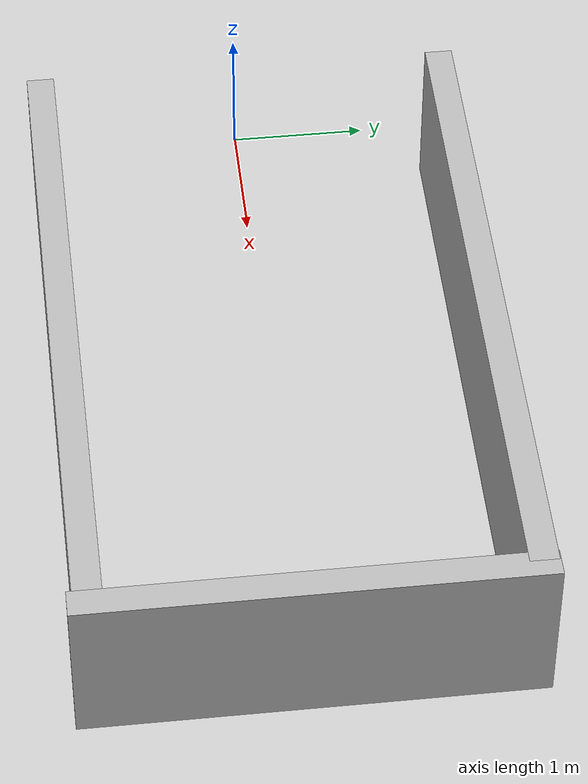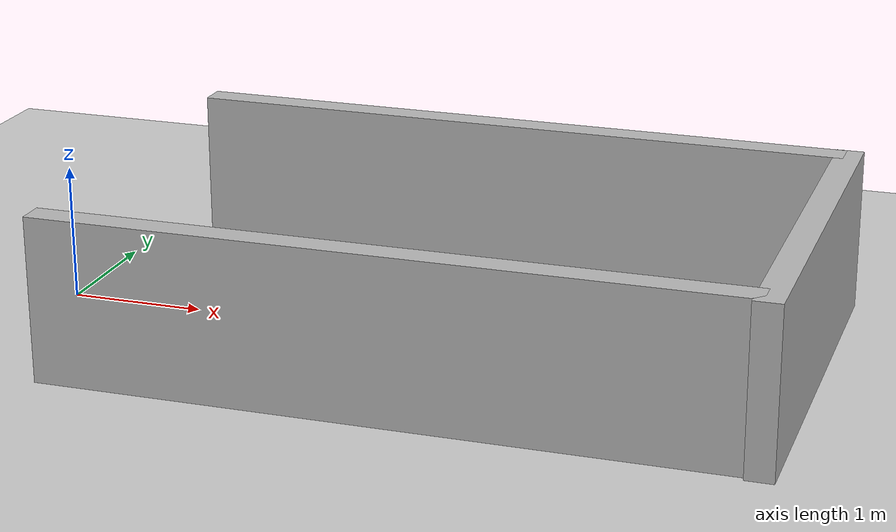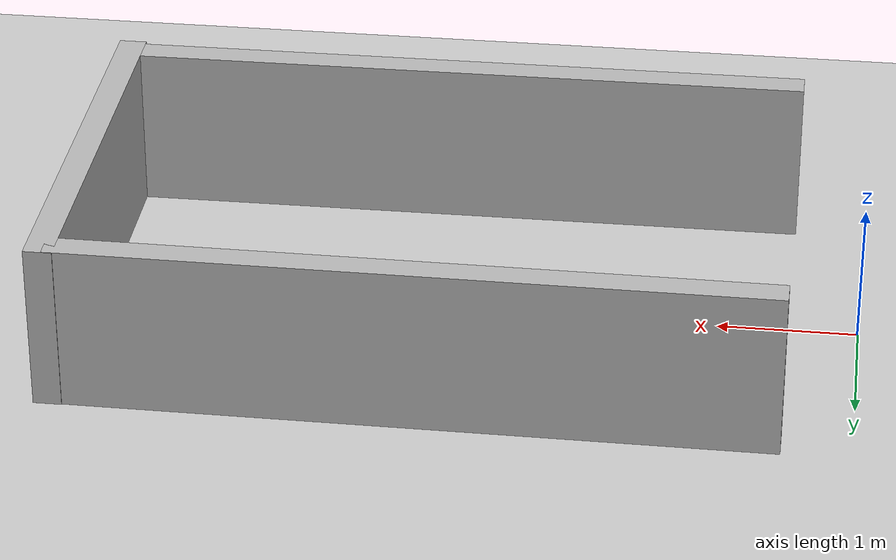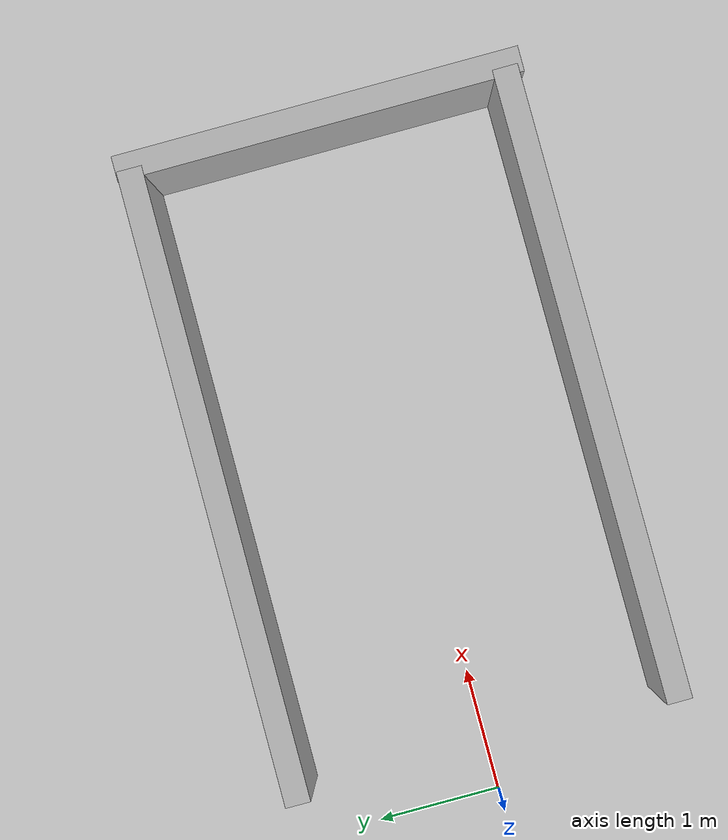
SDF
<?xml version="1.0"?>
<sdf version="1.6">
  <world name="v2-04g-r4-r1-maneuver-s5105">
    <gravity>0 0 -9.81</gravity>
    <physics name="v2_deterministic" type="ode">
      <max_step_size>0.002</max_step_size>
      <real_time_update_rate>500</real_time_update_rate>
    </physics>
    <include>
      <uri>model://sun</uri>
    </include>
    <include>
      <uri>model://ground_plane</uri>
    </include>
    <model name="bay-left">
      <static>true</static>
      <pose>2.988328823 1.494700720 0.600000000 0 0 -0.004816746</pose>
      <link name="link">
        <collision name="collision">
          <geometry>
            <box>
              <size>5.000000 0.200000 1.200000</size>
            </box>
          </geometry>
        </collision>
        <visual name="visual">
          <geometry>
            <box>
              <size>5.000000 0.200000 1.200000</size>
            </box>
          </geometry>
        </visual>
      </link>
    </model>
    <model name="bay-right">
      <static>true</static>
      <pose>2.987866432 -1.487022747 0.600000000 0 0 0.004461734</pose>
      <link name="link">
        <collision name="collision">
          <geometry>
            <box>
              <size>5.000000 0.200000 1.200000</size>
            </box>
          </geometry>
        </collision>
        <visual name="visual">
          <geometry>
            <box>
              <size>5.000000 0.200000 1.200000</size>
            </box>
          </geometry>
        </visual>
      </link>
    </model>
    <model name="bay-back">
      <static>true</static>
      <pose>5.515086908 -0.011201369 0.600000000 0 0 0.001821331</pose>
      <link name="link">
        <collision name="collision">
          <geometry>
            <box>
              <size>0.200000 3.200000 1.200000</size>
            </box>
          </geometry>
        </collision>
        <visual name="visual">
          <geometry>
            <box>
              <size>0.200000 3.200000 1.200000</size>
            </box>
          </geometry>
        </visual>
      </link>
    </model>
  </world>
</sdf>
